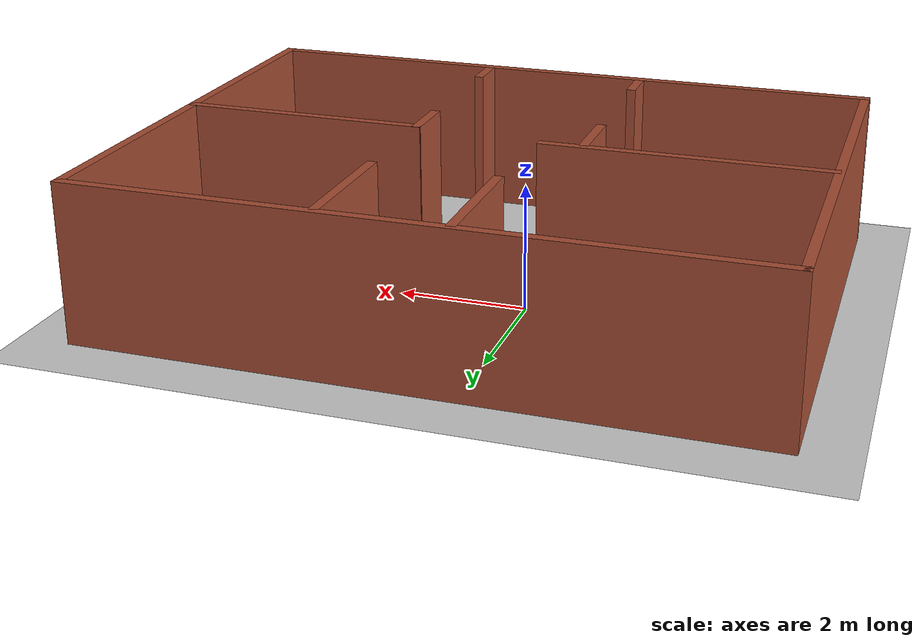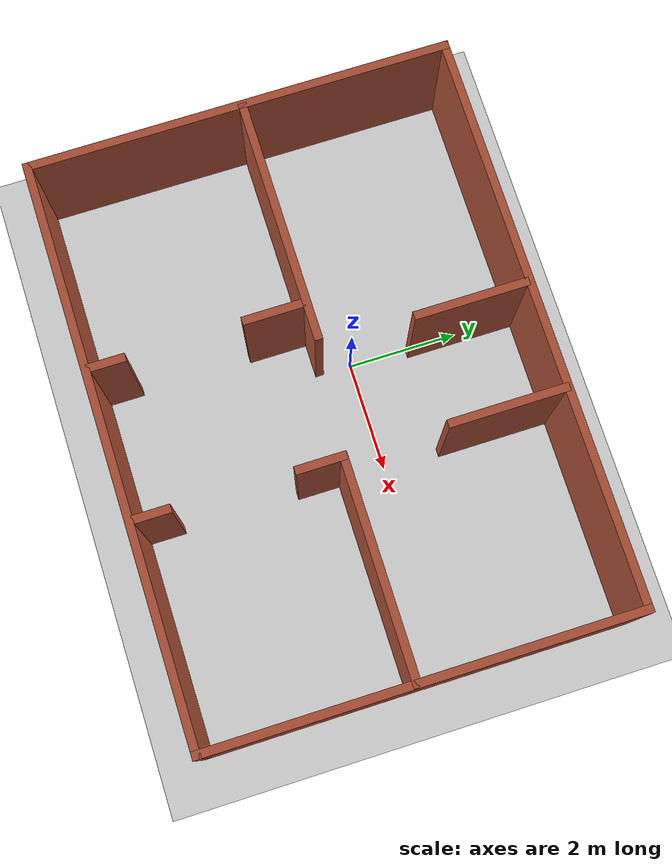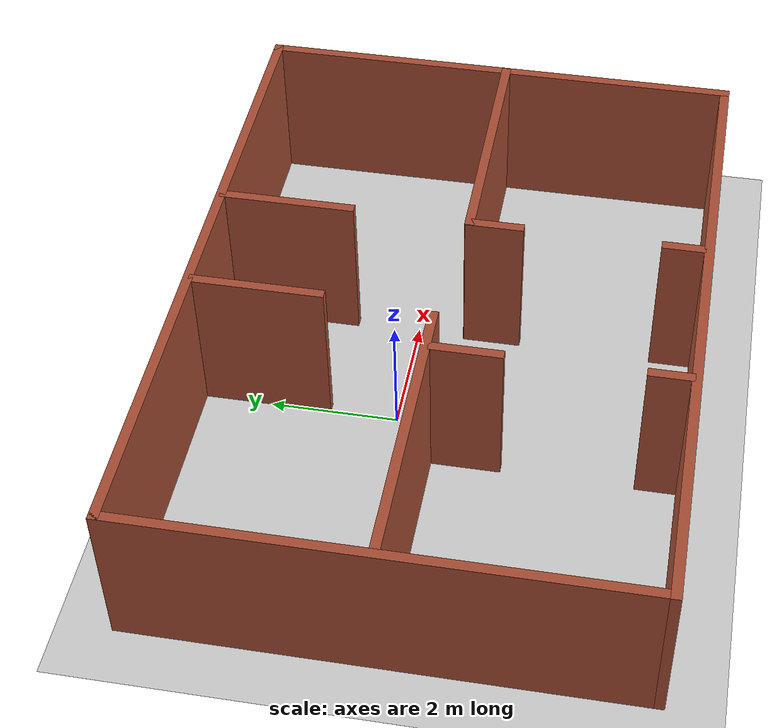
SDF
<sdf version="1.7">
 <world name="default">
  <light name="sun" type="directional">
   <pose>0 0 10 0 -0 0</pose>
   <diffuse>0.8 0.8 0.8 1</diffuse>
   <specular>0.2 0.2 0.2 1</specular>
   <attenuation>
    <range>1000</range>
    <constant>0.9</constant>
    <linear>0.01</linear>
    <quadratic>0.001</quadratic>
   </attenuation>
   <direction>-0.5 0.1 -0.9</direction>
   <spot><inner_angle>0</inner_angle><outer_angle>0</outer_angle><falloff>0</falloff></spot>
  </light>
  <model name="ground_plane">
   <static>1</static>
   <link name="link">
    <collision name="collision">
     <geometry><plane><normal>0 0 1</normal><size>100 100</size></plane></geometry>
     <surface>
      <contact><collide_bitmask>65535</collide_bitmask></contact>
      <friction><ode><mu>100</mu><mu2>50</mu2></ode></friction>
     </surface>
    </collision>
    <visual name="visual">
     <cast_shadows>0</cast_shadows>
     <geometry><plane><normal>0 0 1</normal><size>100 100</size></plane></geometry>
     <material>
      <script><uri>file://media/materials/scripts/gazebo.material</uri><name>Gazebo/Grey</name></script>
     </material>
    </visual>
   </link>
  </model>
  <gravity>0 0 -9.8</gravity>
  <magnetic_field>6e-06 2.3e-05 -4.2e-05</magnetic_field>
  <atmosphere type="adiabatic"/>
  <physics type="ode">
   <max_step_size>0.001</max_step_size>
   <real_time_factor>1</real_time_factor>
   <real_time_update_rate>1000</real_time_update_rate>
  </physics>
  <scene><ambient>0.4 0.4 0.4 1</ambient><background>0.7 0.7 0.7 1</background><shadows>1</shadows></scene>
  <spherical_coordinates>
   <surface_model>EARTH_WGS84</surface_model>
   <latitude_deg>0</latitude_deg>
   <longitude_deg>0</longitude_deg>
   <elevation>0</elevation>
   <heading_deg>0</heading_deg>
  </spherical_coordinates>
  <model name="Planimetria">
   <link name="Wall_0">
    <pose>0 3.78844 0 0 -0 0</pose>
    <visual name="Wall_0_Visual">
     <pose>0 0 1.25 0 -0 0</pose>
     <geometry><box><size>10.5 0.15 2.5</size></box></geometry>
     <material>
      <script><uri>file://media/materials/scripts/gazebo.material</uri><name>Gazebo/Bricks</name></script>
      <ambient>1 1 1 1</ambient>
      <shader type="pixel"/>
     </material>
     <meta><layer>0</layer></meta>
    </visual>
    <collision name="Wall_0_Collision">
     <pose>0 0 1.25 0 -0 0</pose>
     <geometry><box><size>10.5 0.15 2.5</size></box></geometry>
     <surface>
      <friction>
       <ode><mu>1</mu><mu2>1</mu2><fdir1>0 0 0</fdir1><slip1>0</slip1><slip2>0</slip2></ode>
       <torsional>
        <coefficient>1</coefficient>
        <patch_radius>0</patch_radius>
        <surface_radius>0</surface_radius>
        <use_patch_radius>1</use_patch_radius>
        <ode><slip>0</slip></ode>
       </torsional>
      </friction>
      <bounce><restitution_coefficient>0</restitution_coefficient><threshold>1e+06</threshold></bounce>
      <contact>
       <collide_without_contact>0</collide_without_contact>
       <collide_without_contact_bitmask>1</collide_without_contact_bitmask>
       <collide_bitmask>1</collide_bitmask>
       <ode>
        <soft_cfm>0</soft_cfm>
        <soft_erp>0.2</soft_erp>
        <kp>1e+13</kp>
        <kd>1</kd>
        <max_vel>0.01</max_vel>
        <min_depth>0</min_depth>
       </ode>
       <bullet>
        <split_impulse>1</split_impulse>
        <split_impulse_penetration_threshold>-0.01</split_impulse_penetration_threshold>
        <soft_cfm>0</soft_cfm>
        <soft_erp>0.2</soft_erp>
        <kp>1e+13</kp>
        <kd>1</kd>
       </bullet>
      </contact>
     </surface>
    </collision>
   </link>
   <link name="Wall_10">
    <pose>-0.623234 2.74721 0 0 0 -1.5708</pose>
    <inertial>
     <inertia><ixx>0</ixx><ixy>0</ixy><ixz>0</ixz><iyy>0</iyy><iyz>0</iyz><izz>0</izz></inertia>
     <mass>0</mass>
    </inertial>
    <visual name="Wall_10_Visual">
     <pose>0 0 1.25 0 -0 0</pose>
     <geometry><box><size>2.06256 0.15 2.5</size></box></geometry>
     <material>
      <script><uri>file://media/materials/scripts/gazebo.material</uri><name>Gazebo/Bricks</name></script>
      <ambient>1 1 1 1</ambient>
      <shader type="pixel"/>
     </material>
     <meta><layer>0</layer></meta>
    </visual>
    <collision name="Wall_10_Collision">
     <pose>0 0 1.25 0 -0 0</pose>
     <geometry><box><size>2.06256 0.15 2.5</size></box></geometry>
     <surface>
      <friction>
       <ode><mu>1</mu><mu2>1</mu2><fdir1>0 0 0</fdir1><slip1>0</slip1><slip2>0</slip2></ode>
       <torsional>
        <coefficient>1</coefficient>
        <patch_radius>0</patch_radius>
        <surface_radius>0</surface_radius>
        <use_patch_radius>1</use_patch_radius>
        <ode><slip>0</slip></ode>
       </torsional>
      </friction>
      <bounce><restitution_coefficient>0</restitution_coefficient><threshold>1e+06</threshold></bounce>
      <contact>
       <collide_without_contact>0</collide_without_contact>
       <collide_without_contact_bitmask>1</collide_without_contact_bitmask>
       <collide_bitmask>1</collide_bitmask>
       <ode>
        <soft_cfm>0</soft_cfm>
        <soft_erp>0.2</soft_erp>
        <kp>1e+13</kp>
        <kd>1</kd>
        <max_vel>0.01</max_vel>
        <min_depth>0</min_depth>
       </ode>
       <bullet>
        <split_impulse>1</split_impulse>
        <split_impulse_penetration_threshold>-0.01</split_impulse_penetration_threshold>
        <soft_cfm>0</soft_cfm>
        <soft_erp>0.2</soft_erp>
        <kp>1e+13</kp>
        <kd>1</kd>
       </bullet>
      </contact>
     </surface>
    </collision>
   </link>
   <link name="Wall_13">
    <pose>1.31395 2.74084 0 0 0 -1.5708</pose>
    <inertial>
     <inertia><ixx>0</ixx><ixy>0</ixy><ixz>0</ixz><iyy>0</iyy><iyz>0</iyz><izz>0</izz></inertia>
     <mass>0</mass>
    </inertial>
    <visual name="Wall_13_Visual">
     <pose>0 0 1.25 0 -0 0</pose>
     <geometry><box><size>2.14237 0.15 2.5</size></box></geometry>
     <material>
      <script><uri>file://media/materials/scripts/gazebo.material</uri><name>Gazebo/Bricks</name></script>
      <ambient>1 1 1 1</ambient>
      <shader type="pixel"/>
     </material>
     <meta><layer>0</layer></meta>
    </visual>
    <collision name="Wall_13_Collision">
     <pose>0 0 1.25 0 -0 0</pose>
     <geometry><box><size>2.14237 0.15 2.5</size></box></geometry>
     <surface>
      <friction>
       <ode><mu>1</mu><mu2>1</mu2><fdir1>0 0 0</fdir1><slip1>0</slip1><slip2>0</slip2></ode>
       <torsional>
        <coefficient>1</coefficient>
        <patch_radius>0</patch_radius>
        <surface_radius>0</surface_radius>
        <use_patch_radius>1</use_patch_radius>
        <ode><slip>0</slip></ode>
       </torsional>
      </friction>
      <bounce><restitution_coefficient>0</restitution_coefficient><threshold>1e+06</threshold></bounce>
      <contact>
       <collide_without_contact>0</collide_without_contact>
       <collide_without_contact_bitmask>1</collide_without_contact_bitmask>
       <collide_bitmask>1</collide_bitmask>
       <ode>
        <soft_cfm>0</soft_cfm>
        <soft_erp>0.2</soft_erp>
        <kp>1e+13</kp>
        <kd>1</kd>
        <max_vel>0.01</max_vel>
        <min_depth>0</min_depth>
       </ode>
       <bullet>
        <split_impulse>1</split_impulse>
        <split_impulse_penetration_threshold>-0.01</split_impulse_penetration_threshold>
        <soft_cfm>0</soft_cfm>
        <soft_erp>0.2</soft_erp>
        <kp>1e+13</kp>
        <kd>1</kd>
       </bullet>
      </contact>
     </surface>
    </collision>
   </link>
   <link name="Wall_16">
    <pose>3.23917 -0.143677 0 0 -0 3.14154</pose>
    <visual name="Wall_16_Visual">
     <pose>0 0 1.25 0 -0 0</pose>
     <geometry><box><size>4 0.15 2.5</size></box></geometry>
     <material>
      <script><uri>file://media/materials/scripts/gazebo.material</uri><name>Gazebo/Bricks</name></script>
      <ambient>1 1 1 1</ambient>
      <shader type="pixel"/>
     </material>
     <meta><layer>0</layer></meta>
    </visual>
    <collision name="Wall_16_Collision">
     <pose>0 0 1.25 0 -0 0</pose>
     <geometry><box><size>4 0.15 2.5</size></box></geometry>
     <surface>
      <friction>
       <ode><mu>1</mu><mu2>1</mu2><fdir1>0 0 0</fdir1><slip1>0</slip1><slip2>0</slip2></ode>
       <torsional>
        <coefficient>1</coefficient>
        <patch_radius>0</patch_radius>
        <surface_radius>0</surface_radius>
        <use_patch_radius>1</use_patch_radius>
        <ode><slip>0</slip></ode>
       </torsional>
      </friction>
      <bounce><restitution_coefficient>0</restitution_coefficient><threshold>1e+06</threshold></bounce>
      <contact>
       <collide_without_contact>0</collide_without_contact>
       <collide_without_contact_bitmask>1</collide_without_contact_bitmask>
       <collide_bitmask>1</collide_bitmask>
       <ode>
        <soft_cfm>0</soft_cfm>
        <soft_erp>0.2</soft_erp>
        <kp>1e+13</kp>
        <kd>1</kd>
        <max_vel>0.01</max_vel>
        <min_depth>0</min_depth>
       </ode>
       <bullet>
        <split_impulse>1</split_impulse>
        <split_impulse_penetration_threshold>-0.01</split_impulse_penetration_threshold>
        <soft_cfm>0</soft_cfm>
        <soft_erp>0.2</soft_erp>
        <kp>1e+13</kp>
        <kd>1</kd>
       </bullet>
      </contact>
     </surface>
    </collision>
   </link>
   <link name="Wall_19">
    <pose>-1.40471 -0.524727 0 0 0 -1.5708</pose>
    <inertial>
     <inertia><ixx>0</ixx><ixy>0</ixy><ixz>0</ixz><iyy>0</iyy><iyz>0</iyz><izz>0</izz></inertia>
     <mass>0</mass>
    </inertial>
    <visual name="Wall_19_Visual">
     <pose>0 0 1.25 0 -0 0</pose>
     <geometry><box><size>1.10278 0.15 2.5</size></box></geometry>
     <material>
      <script><uri>file://media/materials/scripts/gazebo.material</uri><name>Gazebo/Bricks</name></script>
      <ambient>1 1 1 1</ambient>
      <shader type="pixel"/>
     </material>
     <meta><layer>0</layer></meta>
    </visual>
    <collision name="Wall_19_Collision">
     <pose>0 0 1.25 0 -0 0</pose>
     <geometry><box><size>1.10278 0.15 2.5</size></box></geometry>
     <surface>
      <friction>
       <ode><mu>1</mu><mu2>1</mu2><fdir1>0 0 0</fdir1><slip1>0</slip1><slip2>0</slip2></ode>
       <torsional>
        <coefficient>1</coefficient>
        <patch_radius>0</patch_radius>
        <surface_radius>0</surface_radius>
        <use_patch_radius>1</use_patch_radius>
        <ode><slip>0</slip></ode>
       </torsional>
      </friction>
      <bounce><restitution_coefficient>0</restitution_coefficient><threshold>1e+06</threshold></bounce>
      <contact>
       <collide_without_contact>0</collide_without_contact>
       <collide_without_contact_bitmask>1</collide_without_contact_bitmask>
       <collide_bitmask>1</collide_bitmask>
       <ode>
        <soft_cfm>0</soft_cfm>
        <soft_erp>0.2</soft_erp>
        <kp>1e+13</kp>
        <kd>1</kd>
        <max_vel>0.01</max_vel>
        <min_depth>0</min_depth>
       </ode>
       <bullet>
        <split_impulse>1</split_impulse>
        <split_impulse_penetration_threshold>-0.01</split_impulse_penetration_threshold>
        <soft_cfm>0</soft_cfm>
        <soft_erp>0.2</soft_erp>
        <kp>1e+13</kp>
        <kd>1</kd>
       </bullet>
      </contact>
     </surface>
    </collision>
   </link>
   <link name="Wall_2">
    <pose>5.175 -0.011565 0 0 0 -1.5708</pose>
    <visual name="Wall_2_Visual">
     <pose>0 0 1.25 0 -0 0</pose>
     <geometry><box><size>7.75 0.15 2.5</size></box></geometry>
     <material>
      <script><uri>file://media/materials/scripts/gazebo.material</uri><name>Gazebo/Bricks</name></script>
      <ambient>1 1 1 1</ambient>
      <shader type="pixel"/>
     </material>
     <meta><layer>0</layer></meta>
    </visual>
    <collision name="Wall_2_Collision">
     <pose>0 0 1.25 0 -0 0</pose>
     <geometry><box><size>7.75 0.15 2.5</size></box></geometry>
     <surface>
      <friction>
       <ode><mu>1</mu><mu2>1</mu2><fdir1>0 0 0</fdir1><slip1>0</slip1><slip2>0</slip2></ode>
       <torsional>
        <coefficient>1</coefficient>
        <patch_radius>0</patch_radius>
        <surface_radius>0</surface_radius>
        <use_patch_radius>1</use_patch_radius>
        <ode><slip>0</slip></ode>
       </torsional>
      </friction>
      <bounce><restitution_coefficient>0</restitution_coefficient><threshold>1e+06</threshold></bounce>
      <contact>
       <collide_without_contact>0</collide_without_contact>
       <collide_without_contact_bitmask>1</collide_without_contact_bitmask>
       <collide_bitmask>1</collide_bitmask>
       <ode>
        <soft_cfm>0</soft_cfm>
        <soft_erp>0.2</soft_erp>
        <kp>1e+13</kp>
        <kd>1</kd>
        <max_vel>0.01</max_vel>
        <min_depth>0</min_depth>
       </ode>
       <bullet>
        <split_impulse>1</split_impulse>
        <split_impulse_penetration_threshold>-0.01</split_impulse_penetration_threshold>
        <soft_cfm>0</soft_cfm>
        <soft_erp>0.2</soft_erp>
        <kp>1e+13</kp>
        <kd>1</kd>
       </bullet>
      </contact>
     </surface>
    </collision>
   </link>
   <link name="Wall_21">
    <pose>-1.39761 -3.44944 0 0 0 -1.5708</pose>
    <inertial>
     <inertia><ixx>0</ixx><ixy>0</ixy><ixz>0</ixz><iyy>0</iyy><iyz>0</iyz><izz>0</izz></inertia>
     <mass>0</mass>
    </inertial>
    <visual name="Wall_21_Visual">
     <pose>0 0 1.25 0 -0 0</pose>
     <geometry><box><size>0.678216 0.15 2.5</size></box></geometry>
     <material>
      <script><uri>file://media/materials/scripts/gazebo.material</uri><name>Gazebo/Bricks</name></script>
      <ambient>1 1 1 1</ambient>
      <shader type="pixel"/>
     </material>
     <meta><layer>0</layer></meta>
    </visual>
    <collision name="Wall_21_Collision">
     <pose>0 0 1.25 0 -0 0</pose>
     <geometry><box><size>0.678216 0.15 2.5</size></box></geometry>
     <surface>
      <friction>
       <ode><mu>1</mu><mu2>1</mu2><fdir1>0 0 0</fdir1><slip1>0</slip1><slip2>0</slip2></ode>
       <torsional>
        <coefficient>1</coefficient>
        <patch_radius>0</patch_radius>
        <surface_radius>0</surface_radius>
        <use_patch_radius>1</use_patch_radius>
        <ode><slip>0</slip></ode>
       </torsional>
      </friction>
      <bounce><restitution_coefficient>0</restitution_coefficient><threshold>1e+06</threshold></bounce>
      <contact>
       <collide_without_contact>0</collide_without_contact>
       <collide_without_contact_bitmask>1</collide_without_contact_bitmask>
       <collide_bitmask>1</collide_bitmask>
       <ode>
        <soft_cfm>0</soft_cfm>
        <soft_erp>0.2</soft_erp>
        <kp>1e+13</kp>
        <kd>1</kd>
        <max_vel>0.01</max_vel>
        <min_depth>0</min_depth>
       </ode>
       <bullet>
        <split_impulse>1</split_impulse>
        <split_impulse_penetration_threshold>-0.01</split_impulse_penetration_threshold>
        <soft_cfm>0</soft_cfm>
        <soft_erp>0.2</soft_erp>
        <kp>1e+13</kp>
        <kd>1</kd>
       </bullet>
      </contact>
     </surface>
    </collision>
   </link>
   <link name="Wall_23">
    <pose>1.30387 -0.531504 0 0 0 -1.5708</pose>
    <inertial>
     <inertia><ixx>0</ixx><ixy>0</ixy><ixz>0</ixz><iyy>0</iyy><iyz>0</iyz><izz>0</izz></inertia>
     <mass>0</mass>
    </inertial>
    <visual name="Wall_23_Visual">
     <pose>0 0 1.25 0 -0 0</pose>
     <geometry><box><size>0.909418 0.15 2.5</size></box></geometry>
     <material>
      <script><uri>file://media/materials/scripts/gazebo.material</uri><name>Gazebo/Bricks</name></script>
      <ambient>1 1 1 1</ambient>
      <shader type="pixel"/>
     </material>
     <meta><layer>0</layer></meta>
    </visual>
    <collision name="Wall_23_Collision">
     <pose>0 0 1.25 0 -0 0</pose>
     <geometry><box><size>0.909418 0.15 2.5</size></box></geometry>
     <surface>
      <friction>
       <ode><mu>1</mu><mu2>1</mu2><fdir1>0 0 0</fdir1><slip1>0</slip1><slip2>0</slip2></ode>
       <torsional>
        <coefficient>1</coefficient>
        <patch_radius>0</patch_radius>
        <surface_radius>0</surface_radius>
        <use_patch_radius>1</use_patch_radius>
        <ode><slip>0</slip></ode>
       </torsional>
      </friction>
      <bounce><restitution_coefficient>0</restitution_coefficient><threshold>1e+06</threshold></bounce>
      <contact>
       <collide_without_contact>0</collide_without_contact>
       <collide_without_contact_bitmask>1</collide_without_contact_bitmask>
       <collide_bitmask>1</collide_bitmask>
       <ode>
        <soft_cfm>0</soft_cfm>
        <soft_erp>0.2</soft_erp>
        <kp>1e+13</kp>
        <kd>1</kd>
        <max_vel>0.01</max_vel>
        <min_depth>0</min_depth>
       </ode>
       <bullet>
        <split_impulse>1</split_impulse>
        <split_impulse_penetration_threshold>-0.01</split_impulse_penetration_threshold>
        <soft_cfm>0</soft_cfm>
        <soft_erp>0.2</soft_erp>
        <kp>1e+13</kp>
        <kd>1</kd>
       </bullet>
      </contact>
     </surface>
    </collision>
   </link>
   <link name="Wall_25">
    <pose>1.28367 -3.42631 0 0 0 -1.5708</pose>
    <inertial>
     <inertia><ixx>0</ixx><ixy>0</ixy><ixz>0</ixz><iyy>0</iyy><iyz>0</iyz><izz>0</izz></inertia>
     <mass>0</mass>
    </inertial>
    <visual name="Wall_25_Visual">
     <pose>0 0 1.25 0 -0 0</pose>
     <geometry><box><size>0.670436 0.15 2.5</size></box></geometry>
     <material>
      <script><uri>file://media/materials/scripts/gazebo.material</uri><name>Gazebo/Bricks</name></script>
      <ambient>1 1 1 1</ambient>
      <shader type="pixel"/>
     </material>
     <meta><layer>0</layer></meta>
    </visual>
    <collision name="Wall_25_Collision">
     <pose>0 0 1.25 0 -0 0</pose>
     <geometry><box><size>0.670436 0.15 2.5</size></box></geometry>
     <surface>
      <friction>
       <ode><mu>1</mu><mu2>1</mu2><fdir1>0 0 0</fdir1><slip1>0</slip1><slip2>0</slip2></ode>
       <torsional>
        <coefficient>1</coefficient>
        <patch_radius>0</patch_radius>
        <surface_radius>0</surface_radius>
        <use_patch_radius>1</use_patch_radius>
        <ode><slip>0</slip></ode>
       </torsional>
      </friction>
      <bounce><restitution_coefficient>0</restitution_coefficient><threshold>1e+06</threshold></bounce>
      <contact>
       <collide_without_contact>0</collide_without_contact>
       <collide_without_contact_bitmask>1</collide_without_contact_bitmask>
       <collide_bitmask>1</collide_bitmask>
       <ode>
        <soft_cfm>0</soft_cfm>
        <soft_erp>0.2</soft_erp>
        <kp>1e+13</kp>
        <kd>1</kd>
        <max_vel>0.01</max_vel>
        <min_depth>0</min_depth>
       </ode>
       <bullet>
        <split_impulse>1</split_impulse>
        <split_impulse_penetration_threshold>-0.01</split_impulse_penetration_threshold>
        <soft_cfm>0</soft_cfm>
        <soft_erp>0.2</soft_erp>
        <kp>1e+13</kp>
        <kd>1</kd>
       </bullet>
      </contact>
     </surface>
    </collision>
   </link>
   <link name="Wall_3">
    <pose>0 -3.81156 0 0 -0 3.14159</pose>
    <visual name="Wall_3_Visual">
     <pose>0 0 1.25 0 -0 0</pose>
     <geometry><box><size>10.5 0.15 2.5</size></box></geometry>
     <material>
      <script><uri>file://media/materials/scripts/gazebo.material</uri><name>Gazebo/Bricks</name></script>
      <ambient>1 1 1 1</ambient>
      <shader type="pixel"/>
     </material>
     <meta><layer>0</layer></meta>
    </visual>
    <collision name="Wall_3_Collision">
     <pose>0 0 1.25 0 -0 0</pose>
     <geometry><box><size>10.5 0.15 2.5</size></box></geometry>
     <surface>
      <friction>
       <ode><mu>1</mu><mu2>1</mu2><fdir1>0 0 0</fdir1><slip1>0</slip1><slip2>0</slip2></ode>
       <torsional>
        <coefficient>1</coefficient>
        <patch_radius>0</patch_radius>
        <surface_radius>0</surface_radius>
        <use_patch_radius>1</use_patch_radius>
        <ode><slip>0</slip></ode>
       </torsional>
      </friction>
      <bounce><restitution_coefficient>0</restitution_coefficient><threshold>1e+06</threshold></bounce>
      <contact>
       <collide_without_contact>0</collide_without_contact>
       <collide_without_contact_bitmask>1</collide_without_contact_bitmask>
       <collide_bitmask>1</collide_bitmask>
       <ode>
        <soft_cfm>0</soft_cfm>
        <soft_erp>0.2</soft_erp>
        <kp>1e+13</kp>
        <kd>1</kd>
        <max_vel>0.01</max_vel>
        <min_depth>0</min_depth>
       </ode>
       <bullet>
        <split_impulse>1</split_impulse>
        <split_impulse_penetration_threshold>-0.01</split_impulse_penetration_threshold>
        <soft_cfm>0</soft_cfm>
        <soft_erp>0.2</soft_erp>
        <kp>1e+13</kp>
        <kd>1</kd>
       </bullet>
      </contact>
     </surface>
    </collision>
   </link>
   <link name="Wall_4">
    <pose>-5.175 -0.011565 0 0 -0 1.5708</pose>
    <visual name="Wall_4_Visual">
     <pose>0 0 1.25 0 -0 0</pose>
     <geometry><box><size>7.75 0.15 2.5</size></box></geometry>
     <material>
      <script><uri>file://media/materials/scripts/gazebo.material</uri><name>Gazebo/Bricks</name></script>
      <ambient>1 1 1 1</ambient>
      <shader type="pixel"/>
     </material>
     <meta><layer>0</layer></meta>
    </visual>
    <collision name="Wall_4_Collision">
     <pose>0 0 1.25 0 -0 0</pose>
     <geometry><box><size>7.75 0.15 2.5</size></box></geometry>
     <surface>
      <friction>
       <ode><mu>1</mu><mu2>1</mu2><fdir1>0 0 0</fdir1><slip1>0</slip1><slip2>0</slip2></ode>
       <torsional>
        <coefficient>1</coefficient>
        <patch_radius>0</patch_radius>
        <surface_radius>0</surface_radius>
        <use_patch_radius>1</use_patch_radius>
        <ode><slip>0</slip></ode>
       </torsional>
      </friction>
      <bounce><restitution_coefficient>0</restitution_coefficient><threshold>1e+06</threshold></bounce>
      <contact>
       <collide_without_contact>0</collide_without_contact>
       <collide_without_contact_bitmask>1</collide_without_contact_bitmask>
       <collide_bitmask>1</collide_bitmask>
       <ode>
        <soft_cfm>0</soft_cfm>
        <soft_erp>0.2</soft_erp>
        <kp>1e+13</kp>
        <kd>1</kd>
        <max_vel>0.01</max_vel>
        <min_depth>0</min_depth>
       </ode>
       <bullet>
        <split_impulse>1</split_impulse>
        <split_impulse_penetration_threshold>-0.01</split_impulse_penetration_threshold>
        <soft_cfm>0</soft_cfm>
        <soft_erp>0.2</soft_erp>
        <kp>1e+13</kp>
        <kd>1</kd>
       </bullet>
      </contact>
     </surface>
    </collision>
   </link>
   <link name="Wall_6">
    <pose>-2.95174 0.064407 0 0 -0 0</pose>
    <inertial>
     <inertia><ixx>0</ixx><ixy>0</ixy><ixz>0</ixz><iyy>0</iyy><iyz>0</iyz><izz>0</izz></inertia>
     <mass>0</mass>
    </inertial>
    <visual name="Wall_6_Visual">
     <pose>0 0 1.25 0 -0 0</pose>
     <geometry><box><size>4.48414 0.15 2.5</size></box></geometry>
     <material>
      <script><uri>file://media/materials/scripts/gazebo.material</uri><name>Gazebo/Bricks</name></script>
      <ambient>1 1 1 1</ambient>
      <shader type="pixel"/>
     </material>
     <meta><layer>0</layer></meta>
    </visual>
    <collision name="Wall_6_Collision">
     <pose>0 0 1.25 0 -0 0</pose>
     <geometry><box><size>4.48414 0.15 2.5</size></box></geometry>
     <surface>
      <friction>
       <ode><mu>1</mu><mu2>1</mu2><fdir1>0 0 0</fdir1><slip1>0</slip1><slip2>0</slip2></ode>
       <torsional>
        <coefficient>1</coefficient>
        <patch_radius>0</patch_radius>
        <surface_radius>0</surface_radius>
        <use_patch_radius>1</use_patch_radius>
        <ode><slip>0</slip></ode>
       </torsional>
      </friction>
      <bounce><restitution_coefficient>0</restitution_coefficient><threshold>1e+06</threshold></bounce>
      <contact>
       <collide_without_contact>0</collide_without_contact>
       <collide_without_contact_bitmask>1</collide_without_contact_bitmask>
       <collide_bitmask>1</collide_bitmask>
       <ode>
        <soft_cfm>0</soft_cfm>
        <soft_erp>0.2</soft_erp>
        <kp>1e+13</kp>
        <kd>1</kd>
        <max_vel>0.01</max_vel>
        <min_depth>0</min_depth>
       </ode>
       <bullet>
        <split_impulse>1</split_impulse>
        <split_impulse_penetration_threshold>-0.01</split_impulse_penetration_threshold>
        <soft_cfm>0</soft_cfm>
        <soft_erp>0.2</soft_erp>
        <kp>1e+13</kp>
        <kd>1</kd>
       </bullet>
      </contact>
     </surface>
    </collision>
   </link>
   <static>1</static>
   <pose>0.703046 -0.65842 0 0 -0 0</pose>
  </model>
 </world>
</sdf>
